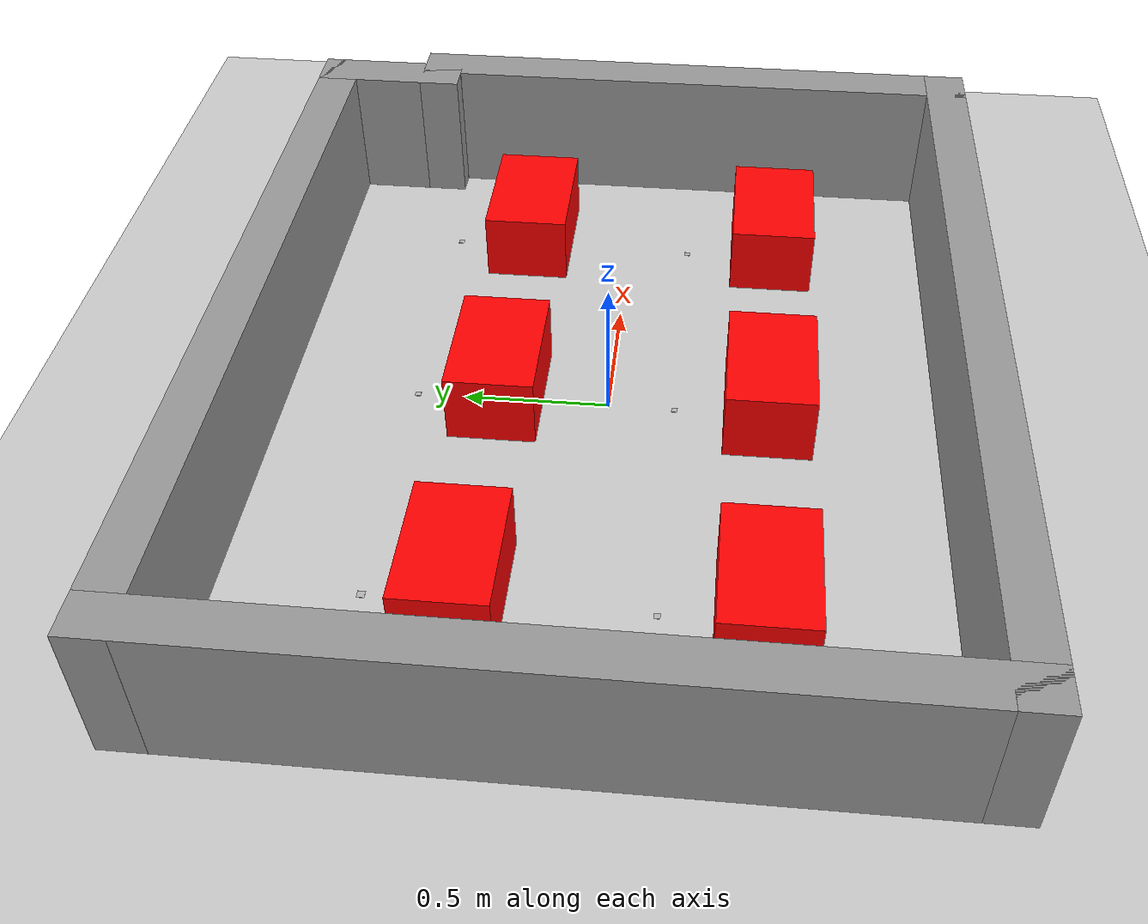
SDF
<sdf version="1.7">
 <world name="default">
  <light name="sun" type="directional">
   <pose>0 0 10 0 -0 0</pose>
   <diffuse>0.8 0.8 0.8 1</diffuse>
   <specular>0.2 0.2 0.2 1</specular>
   <attenuation>
    <range>1000</range>
    <constant>0.9</constant>
    <linear>0.01</linear>
    <quadratic>0.001</quadratic>
   </attenuation>
   <direction>-0.5 0.1 -0.9</direction>
   <spot><inner_angle>0</inner_angle><outer_angle>0</outer_angle><falloff>0</falloff></spot>
  </light>
  <model name="ground_plane">
   <static>1</static>
   <link name="link">
    <collision name="collision">
     <geometry><plane><normal>0 0 1</normal><size>100 100</size></plane></geometry>
     <surface>
      <contact><collide_bitmask>65535</collide_bitmask></contact>
      <friction><ode><mu>100</mu><mu2>50</mu2></ode></friction>
     </surface>
    </collision>
    <visual name="visual">
     <cast_shadows>0</cast_shadows>
     <geometry><plane><normal>0 0 1</normal><size>100 100</size></plane></geometry>
     <material>
      <script><uri>file://media/materials/scripts/gazebo.material</uri><name>Gazebo/Grey</name></script>
     </material>
    </visual>
   </link>
  </model>
  <gravity>0 0 -9.8</gravity>
  <magnetic_field>6e-06 2.3e-05 -4.2e-05</magnetic_field>
  <atmosphere type="adiabatic"/>
  <physics type="ode">
   <max_step_size>0.001</max_step_size>
   <real_time_factor>1</real_time_factor>
   <real_time_update_rate>1000</real_time_update_rate>
  </physics>
  <scene><ambient>0.4 0.4 0.4 1</ambient><background>0.7 0.7 0.7 1</background><shadows>1</shadows></scene>
  <spherical_coordinates>
   <surface_model>EARTH_WGS84</surface_model>
   <latitude_deg>0</latitude_deg>
   <longitude_deg>0</longitude_deg>
   <elevation>0</elevation>
   <heading_deg>0</heading_deg>
  </spherical_coordinates>
  <model name="CNC">
   <link name="link_2">
    <inertial>
     <mass>1</mass>
     <inertia>
      <ixx>0.166667</ixx>
      <ixy>0</ixy>
      <ixz>0</ixz>
      <iyy>0.166667</iyy>
      <iyz>0</iyz>
      <izz>0.166667</izz>
     </inertia>
    </inertial>
    <visual name="visual">
     <geometry><box><size>0.45 0.3 0.25</size></box></geometry>
     <material>
      <lighting>1</lighting>
      <script><uri>file://media/materials/scripts/gazebo.material</uri><name>Gazebo/Grey</name></script>
      <shader type="pixel"><normal_map>__default__</normal_map></shader>
      <ambient>1 0 0 1</ambient>
      <diffuse>0.7 0.7 0.7 1</diffuse>
      <specular>0.01 0.01 0.01 1</specular>
      <emissive>0 0 0 1</emissive>
     </material>
    </visual>
    <collision name="collision">
     <geometry><box><size>0.45 0.3 0.25</size></box></geometry>
     <surface>
      <friction>
       <ode><mu>1</mu><mu2>1</mu2><fdir1>0 0 0</fdir1><slip1>0</slip1><slip2>0</slip2></ode>
       <torsional>
        <coefficient>1</coefficient>
        <patch_radius>0</patch_radius>
        <surface_radius>0</surface_radius>
        <use_patch_radius>1</use_patch_radius>
        <ode><slip>0</slip></ode>
       </torsional>
      </friction>
      <bounce><restitution_coefficient>0</restitution_coefficient><threshold>1e+06</threshold></bounce>
      <contact>
       <collide_without_contact>0</collide_without_contact>
       <collide_without_contact_bitmask>1</collide_without_contact_bitmask>
       <collide_bitmask>1</collide_bitmask>
       <ode>
        <soft_cfm>0</soft_cfm>
        <soft_erp>0.2</soft_erp>
        <kp>1e+13</kp>
        <kd>1</kd>
        <max_vel>0.01</max_vel>
        <min_depth>0</min_depth>
       </ode>
       <bullet>
        <split_impulse>1</split_impulse>
        <split_impulse_penetration_threshold>-0.01</split_impulse_penetration_threshold>
        <soft_cfm>0</soft_cfm>
        <soft_erp>0.2</soft_erp>
        <kp>1e+13</kp>
        <kd>1</kd>
       </bullet>
      </contact>
     </surface>
    </collision>
   </link>
   <static>1</static>
   <pose>-0.9 0.375 0.15 0 -0 0</pose>
  </model>
  <model name="my_map">
   <link name="Wall_24">
    <collision name="Wall_24_Collision">
     <geometry><box><size>2.55 0.15 0.5</size></box></geometry>
     <pose>0 0 0.25 0 -0 0</pose>
    </collision>
    <visual name="Wall_24_Visual">
     <pose>0 0 0.25 0 -0 0</pose>
     <geometry><box><size>2.55 0.15 0.5</size></box></geometry>
     <material>
      <script><uri>file://media/materials/scripts/gazebo.material</uri><name>Gazebo/Grey</name></script>
      <ambient>1 1 1 1</ambient>
     </material>
     <meta><layer>0</layer></meta>
    </visual>
    <pose>-1.425 0 0 0 -0 -1.5708</pose>
   </link>
   <link name="Wall_26">
    <collision name="Wall_26_Collision">
     <geometry><box><size>3.00002 0.15 0.5</size></box></geometry>
     <pose>0 0 0.25 0 -0 0</pose>
    </collision>
    <visual name="Wall_26_Visual">
     <pose>0 0 0.25 0 -0 0</pose>
     <geometry><box><size>3.00002 0.15 0.5</size></box></geometry>
     <material>
      <script><uri>file://media/materials/scripts/gazebo.material</uri><name>Gazebo/Grey</name></script>
      <ambient>1 1 1 1</ambient>
     </material>
     <meta><layer>0</layer></meta>
    </visual>
    <pose>0 -1.2 0 0 -0 0</pose>
   </link>
   <link name="Wall_27">
    <collision name="Wall_27_Collision">
     <geometry><box><size>2.144 0.15 0.5</size></box></geometry>
     <pose>0 0 0.25 0 -0 0</pose>
    </collision>
    <visual name="Wall_27_Visual">
     <pose>0 0 0.25 0 -0 0</pose>
     <geometry><box><size>2.144 0.15 0.5</size></box></geometry>
     <material>
      <script><uri>file://media/materials/scripts/gazebo.material</uri><name>Gazebo/Grey</name></script>
      <ambient>1 1 1 1</ambient>
     </material>
     <meta><layer>0</layer></meta>
    </visual>
    <pose>1.425 -0.203 0 0 -0 1.5708</pose>
   </link>
   <link name="Wall_31">
    <collision name="Wall_31_Collision">
     <geometry><box><size>0.235 0.15 0.5</size></box></geometry>
     <pose>0 0 0.25 0 -0 0</pose>
    </collision>
    <visual name="Wall_31_Visual">
     <pose>0 0 0.25 0 -0 0</pose>
     <geometry><box><size>0.235 0.15 0.5</size></box></geometry>
     <material>
      <script><uri>file://media/materials/scripts/gazebo.material</uri><name>Gazebo/Grey</name></script>
      <ambient>1 1 1 1</ambient>
     </material>
     <meta><layer>0</layer></meta>
    </visual>
    <pose>1.3825 0.794 0 0 -0 3.14159</pose>
   </link>
   <link name="Wall_37">
    <collision name="Wall_37_Collision">
     <geometry><box><size>0.556 0.15 0.5</size></box></geometry>
     <pose>0 0 0.25 0 -0 0</pose>
    </collision>
    <visual name="Wall_37_Visual">
     <pose>0 0 0.25 0 -0 0</pose>
     <geometry><box><size>0.556 0.15 0.5</size></box></geometry>
     <material>
      <script><uri>file://media/materials/scripts/gazebo.material</uri><name>Gazebo/Grey</name></script>
      <ambient>1 1 1 1</ambient>
     </material>
     <meta><layer>0</layer></meta>
    </visual>
    <pose>1.34 0.997 0 0 -0 1.5708</pose>
   </link>
   <link name="Wall_39">
    <collision name="Wall_39_Collision">
     <geometry><box><size>2.915 0.15 0.5</size></box></geometry>
     <pose>0 0 0.25 0 -0 0</pose>
    </collision>
    <visual name="Wall_39_Visual">
     <pose>0 0 0.25 0 -0 0</pose>
     <geometry><box><size>2.915 0.15 0.5</size></box></geometry>
     <material>
      <script><uri>file://media/materials/scripts/gazebo.material</uri><name>Gazebo/Grey</name></script>
      <ambient>1 1 1 1</ambient>
     </material>
     <meta><layer>0</layer></meta>
    </visual>
    <pose>-0.0425 1.2 0 0 -0 0</pose>
   </link>
   <static>1</static>
  </model>
  <model name="CNC_0">
   <link name="link_2">
    <inertial>
     <mass>1</mass>
     <inertia>
      <ixx>0.166667</ixx>
      <ixy>0</ixy>
      <ixz>0</ixz>
      <iyy>0.166667</iyy>
      <iyz>0</iyz>
      <izz>0.166667</izz>
     </inertia>
    </inertial>
    <visual name="visual">
     <geometry><box><size>0.45 0.3 0.25</size></box></geometry>
     <material>
      <lighting>1</lighting>
      <script><uri>file://media/materials/scripts/gazebo.material</uri><name>Gazebo/Grey</name></script>
      <shader type="pixel"><normal_map>__default__</normal_map></shader>
      <ambient>1 0 0 1</ambient>
      <diffuse>0.7 0.7 0.7 1</diffuse>
      <specular>0.01 0.01 0.01 1</specular>
      <emissive>0 0 0 1</emissive>
     </material>
    </visual>
    <collision name="collision">
     <geometry><box><size>0.45 0.3 0.25</size></box></geometry>
     <surface>
      <friction>
       <ode><mu>1</mu><mu2>1</mu2><fdir1>0 0 0</fdir1><slip1>0</slip1><slip2>0</slip2></ode>
       <torsional>
        <coefficient>1</coefficient>
        <patch_radius>0</patch_radius>
        <surface_radius>0</surface_radius>
        <use_patch_radius>1</use_patch_radius>
        <ode><slip>0</slip></ode>
       </torsional>
      </friction>
      <bounce><restitution_coefficient>0</restitution_coefficient><threshold>1e+06</threshold></bounce>
      <contact>
       <collide_without_contact>0</collide_without_contact>
       <collide_without_contact_bitmask>1</collide_without_contact_bitmask>
       <collide_bitmask>1</collide_bitmask>
       <ode>
        <soft_cfm>0</soft_cfm>
        <soft_erp>0.2</soft_erp>
        <kp>1e+13</kp>
        <kd>1</kd>
        <max_vel>0.01</max_vel>
        <min_depth>0</min_depth>
       </ode>
       <bullet>
        <split_impulse>1</split_impulse>
        <split_impulse_penetration_threshold>-0.01</split_impulse_penetration_threshold>
        <soft_cfm>0</soft_cfm>
        <soft_erp>0.2</soft_erp>
        <kp>1e+13</kp>
        <kd>1</kd>
       </bullet>
      </contact>
     </surface>
    </collision>
   </link>
   <static>1</static>
   <pose>0 0.375 0.15 0 -0 0</pose>
  </model>
  <model name="CNC_1">
   <link name="link_2">
    <inertial>
     <mass>1</mass>
     <inertia>
      <ixx>0.166667</ixx>
      <ixy>0</ixy>
      <ixz>0</ixz>
      <iyy>0.166667</iyy>
      <iyz>0</iyz>
      <izz>0.166667</izz>
     </inertia>
    </inertial>
    <visual name="visual">
     <geometry><box><size>0.45 0.3 0.25</size></box></geometry>
     <material>
      <lighting>1</lighting>
      <script><uri>file://media/materials/scripts/gazebo.material</uri><name>Gazebo/Grey</name></script>
      <shader type="pixel"><normal_map>__default__</normal_map></shader>
      <ambient>1 0 0 1</ambient>
      <diffuse>0.7 0.7 0.7 1</diffuse>
      <specular>0.01 0.01 0.01 1</specular>
      <emissive>0 0 0 1</emissive>
     </material>
    </visual>
    <collision name="collision">
     <geometry><box><size>0.45 0.3 0.25</size></box></geometry>
     <surface>
      <friction>
       <ode><mu>1</mu><mu2>1</mu2><fdir1>0 0 0</fdir1><slip1>0</slip1><slip2>0</slip2></ode>
       <torsional>
        <coefficient>1</coefficient>
        <patch_radius>0</patch_radius>
        <surface_radius>0</surface_radius>
        <use_patch_radius>1</use_patch_radius>
        <ode><slip>0</slip></ode>
       </torsional>
      </friction>
      <bounce><restitution_coefficient>0</restitution_coefficient><threshold>1e+06</threshold></bounce>
      <contact>
       <collide_without_contact>0</collide_without_contact>
       <collide_without_contact_bitmask>1</collide_without_contact_bitmask>
       <collide_bitmask>1</collide_bitmask>
       <ode>
        <soft_cfm>0</soft_cfm>
        <soft_erp>0.2</soft_erp>
        <kp>1e+13</kp>
        <kd>1</kd>
        <max_vel>0.01</max_vel>
        <min_depth>0</min_depth>
       </ode>
       <bullet>
        <split_impulse>1</split_impulse>
        <split_impulse_penetration_threshold>-0.01</split_impulse_penetration_threshold>
        <soft_cfm>0</soft_cfm>
        <soft_erp>0.2</soft_erp>
        <kp>1e+13</kp>
        <kd>1</kd>
       </bullet>
      </contact>
     </surface>
    </collision>
   </link>
   <static>1</static>
   <pose>0.9 0.375 0.15 0 -0 0</pose>
  </model>
  <model name="CNC_2">
   <link name="link_2">
    <inertial>
     <mass>1</mass>
     <inertia>
      <ixx>0.166667</ixx>
      <ixy>0</ixy>
      <ixz>0</ixz>
      <iyy>0.166667</iyy>
      <iyz>0</iyz>
      <izz>0.166667</izz>
     </inertia>
    </inertial>
    <visual name="visual">
     <geometry><box><size>0.45 0.3 0.25</size></box></geometry>
     <material>
      <lighting>1</lighting>
      <script><uri>file://media/materials/scripts/gazebo.material</uri><name>Gazebo/Grey</name></script>
      <shader type="pixel"><normal_map>__default__</normal_map></shader>
      <ambient>1 0 0 1</ambient>
      <diffuse>0.7 0.7 0.7 1</diffuse>
      <specular>0.01 0.01 0.01 1</specular>
      <emissive>0 0 0 1</emissive>
     </material>
    </visual>
    <collision name="collision">
     <geometry><box><size>0.45 0.3 0.25</size></box></geometry>
     <surface>
      <friction>
       <ode><mu>1</mu><mu2>1</mu2><fdir1>0 0 0</fdir1><slip1>0</slip1><slip2>0</slip2></ode>
       <torsional>
        <coefficient>1</coefficient>
        <patch_radius>0</patch_radius>
        <surface_radius>0</surface_radius>
        <use_patch_radius>1</use_patch_radius>
        <ode><slip>0</slip></ode>
       </torsional>
      </friction>
      <bounce><restitution_coefficient>0</restitution_coefficient><threshold>1e+06</threshold></bounce>
      <contact>
       <collide_without_contact>0</collide_without_contact>
       <collide_without_contact_bitmask>1</collide_without_contact_bitmask>
       <collide_bitmask>1</collide_bitmask>
       <ode>
        <soft_cfm>0</soft_cfm>
        <soft_erp>0.2</soft_erp>
        <kp>1e+13</kp>
        <kd>1</kd>
        <max_vel>0.01</max_vel>
        <min_depth>0</min_depth>
       </ode>
       <bullet>
        <split_impulse>1</split_impulse>
        <split_impulse_penetration_threshold>-0.01</split_impulse_penetration_threshold>
        <soft_cfm>0</soft_cfm>
        <soft_erp>0.2</soft_erp>
        <kp>1e+13</kp>
        <kd>1</kd>
       </bullet>
      </contact>
     </surface>
    </collision>
   </link>
   <static>1</static>
   <pose>0.9 -0.55 0.15 0 -0 0</pose>
  </model>
  <model name="CNC_3">
   <link name="link_2">
    <inertial>
     <mass>1</mass>
     <inertia>
      <ixx>0.166667</ixx>
      <ixy>0</ixy>
      <ixz>0</ixz>
      <iyy>0.166667</iyy>
      <iyz>0</iyz>
      <izz>0.166667</izz>
     </inertia>
    </inertial>
    <visual name="visual">
     <geometry><box><size>0.45 0.3 0.25</size></box></geometry>
     <material>
      <lighting>1</lighting>
      <script><uri>file://media/materials/scripts/gazebo.material</uri><name>Gazebo/Grey</name></script>
      <shader type="pixel"><normal_map>__default__</normal_map></shader>
      <ambient>1 0 0 1</ambient>
      <diffuse>0.7 0.7 0.7 1</diffuse>
      <specular>0.01 0.01 0.01 1</specular>
      <emissive>0 0 0 1</emissive>
     </material>
    </visual>
    <collision name="collision">
     <geometry><box><size>0.45 0.3 0.25</size></box></geometry>
     <surface>
      <friction>
       <ode><mu>1</mu><mu2>1</mu2><fdir1>0 0 0</fdir1><slip1>0</slip1><slip2>0</slip2></ode>
       <torsional>
        <coefficient>1</coefficient>
        <patch_radius>0</patch_radius>
        <surface_radius>0</surface_radius>
        <use_patch_radius>1</use_patch_radius>
        <ode><slip>0</slip></ode>
       </torsional>
      </friction>
      <bounce><restitution_coefficient>0</restitution_coefficient><threshold>1e+06</threshold></bounce>
      <contact>
       <collide_without_contact>0</collide_without_contact>
       <collide_without_contact_bitmask>1</collide_without_contact_bitmask>
       <collide_bitmask>1</collide_bitmask>
       <ode>
        <soft_cfm>0</soft_cfm>
        <soft_erp>0.2</soft_erp>
        <kp>1e+13</kp>
        <kd>1</kd>
        <max_vel>0.01</max_vel>
        <min_depth>0</min_depth>
       </ode>
       <bullet>
        <split_impulse>1</split_impulse>
        <split_impulse_penetration_threshold>-0.01</split_impulse_penetration_threshold>
        <soft_cfm>0</soft_cfm>
        <soft_erp>0.2</soft_erp>
        <kp>1e+13</kp>
        <kd>1</kd>
       </bullet>
      </contact>
     </surface>
    </collision>
   </link>
   <static>1</static>
   <pose>0 -0.55 0.15 0 -0 0</pose>
  </model>
  <model name="CNC_4">
   <link name="link_2">
    <inertial>
     <mass>1</mass>
     <inertia>
      <ixx>0.166667</ixx>
      <ixy>0</ixy>
      <ixz>0</ixz>
      <iyy>0.166667</iyy>
      <iyz>0</iyz>
      <izz>0.166667</izz>
     </inertia>
    </inertial>
    <visual name="visual">
     <geometry><box><size>0.45 0.3 0.25</size></box></geometry>
     <material>
      <lighting>1</lighting>
      <script><uri>file://media/materials/scripts/gazebo.material</uri><name>Gazebo/Grey</name></script>
      <shader type="pixel"><normal_map>__default__</normal_map></shader>
      <ambient>1 0 0 1</ambient>
      <diffuse>0.7 0.7 0.7 1</diffuse>
      <specular>0.01 0.01 0.01 1</specular>
      <emissive>0 0 0 1</emissive>
     </material>
    </visual>
    <collision name="collision">
     <geometry><box><size>0.45 0.3 0.25</size></box></geometry>
     <surface>
      <friction>
       <ode><mu>1</mu><mu2>1</mu2><fdir1>0 0 0</fdir1><slip1>0</slip1><slip2>0</slip2></ode>
       <torsional>
        <coefficient>1</coefficient>
        <patch_radius>0</patch_radius>
        <surface_radius>0</surface_radius>
        <use_patch_radius>1</use_patch_radius>
        <ode><slip>0</slip></ode>
       </torsional>
      </friction>
      <bounce><restitution_coefficient>0</restitution_coefficient><threshold>1e+06</threshold></bounce>
      <contact>
       <collide_without_contact>0</collide_without_contact>
       <collide_without_contact_bitmask>1</collide_without_contact_bitmask>
       <collide_bitmask>1</collide_bitmask>
       <ode>
        <soft_cfm>0</soft_cfm>
        <soft_erp>0.2</soft_erp>
        <kp>1e+13</kp>
        <kd>1</kd>
        <max_vel>0.01</max_vel>
        <min_depth>0</min_depth>
       </ode>
       <bullet>
        <split_impulse>1</split_impulse>
        <split_impulse_penetration_threshold>-0.01</split_impulse_penetration_threshold>
        <soft_cfm>0</soft_cfm>
        <soft_erp>0.2</soft_erp>
        <kp>1e+13</kp>
        <kd>1</kd>
       </bullet>
      </contact>
     </surface>
    </collision>
   </link>
   <static>1</static>
   <pose>-0.9 -0.55 0.15 0 -0 0</pose>
  </model>
  <model name="qr_cnc1">
   <static>true</static>
   <link name="qr_cnc1_link">
    <pose>-0.9 0.67 1e-3 0 0 -1.5707963267948966</pose>
    <visual name="visual_qr_cnc1">
     <cast_shadows>false</cast_shadows>
     <geometry><box><size>0.025 0.025 1e-3</size></box></geometry>
     <material>
      <script>
       <uri>model://qr_cnc1/materials/scripts</uri>
       <uri>model://qr_cnc1/materials/textures</uri>
       <name>qr_cnc1/qr_cnc1</name>
      </script>
     </material>
    </visual>
   </link>
  </model>
  <model name="qr_cnc2">
   <static>true</static>
   <link name="qr_cnc2_link">
    <pose>0 0.67 1e-3 0 0 -1.5707963267948966</pose>
    <visual name="visual_qr_cnc2">
     <cast_shadows>false</cast_shadows>
     <geometry><box><size>0.02 0.02 1e-3</size></box></geometry>
     <material>
      <script>
       <uri>model://qr_cnc2/materials/scripts</uri>
       <uri>model://qr_cnc2/materials/textures</uri>
       <name>qr_cnc2/qr_cnc2</name>
      </script>
     </material>
    </visual>
   </link>
  </model>
  <model name="qr_cnc3">
   <static>true</static>
   <link name="qr_cnc3_link">
    <pose>0.9 0.67 1e-3 0 0 -1.5707963267948966</pose>
    <visual name="visual_qr_cnc3">
     <cast_shadows>false</cast_shadows>
     <geometry><box><size>0.02 0.02 1e-3</size></box></geometry>
     <material>
      <script>
       <uri>model://qr_cnc3/materials/scripts</uri>
       <uri>model://qr_cnc3/materials/textures</uri>
       <name>qr_cnc3/qr_cnc3</name>
      </script>
     </material>
    </visual>
   </link>
  </model>
  <model name="qr_cnc4">
   <static>true</static>
   <link name="qr_cnc4_link">
    <pose>-0.9 -0.23 1e-3 0 0 -1.5707963267948966</pose>
    <visual name="visual_qr_cnc4">
     <cast_shadows>false</cast_shadows>
     <geometry><box><size>0.02 0.02 1e-3</size></box></geometry>
     <material>
      <script>
       <uri>model://qr_cnc4/materials/scripts</uri>
       <uri>model://qr_cnc4/materials/textures</uri>
       <name>qr_cnc4/qr_cnc4</name>
      </script>
     </material>
    </visual>
   </link>
  </model>
  <model name="qr_cnc5">
   <static>true</static>
   <link name="qr_cnc5_link">
    <pose>0 -0.23 1e-3 0 0 -1.5707963267948966</pose>
    <visual name="visual_qr_cnc5">
     <cast_shadows>false</cast_shadows>
     <geometry><box><size>0.02 0.02 1e-3</size></box></geometry>
     <material>
      <script>
       <uri>model://qr_cnc5/materials/scripts</uri>
       <uri>model://qr_cnc5/materials/textures</uri>
       <name>qr_cnc5/qr_cnc5</name>
      </script>
     </material>
    </visual>
   </link>
  </model>
  <model name="qr_cnc6">
   <static>true</static>
   <link name="qr_cnc6_link">
    <pose>0.9 -0.23 1e-3 0 0 -1.5707963267948966</pose>
    <visual name="visual_qr_cnc6">
     <cast_shadows>false</cast_shadows>
     <geometry><box><size>0.02 0.02 1e-3</size></box></geometry>
     <material>
      <script>
       <uri>model://qr_cnc6/materials/scripts</uri>
       <uri>model://qr_cnc6/materials/textures</uri>
       <name>qr_cnc6/qr_cnc6</name>
      </script>
     </material>
    </visual>
   </link>
  </model>
 </world>
</sdf>
